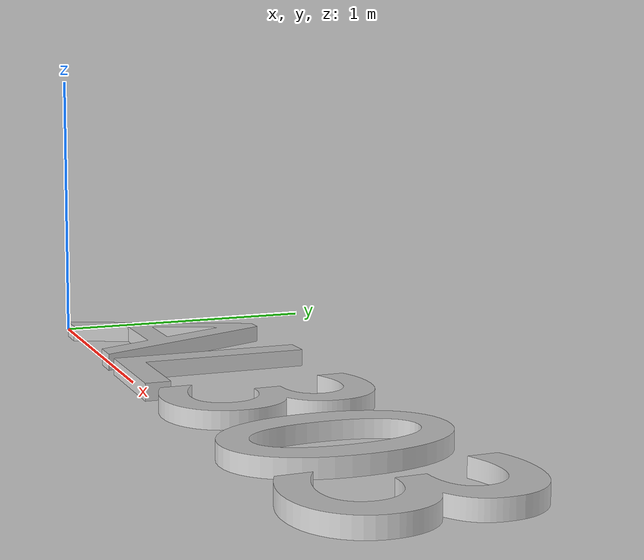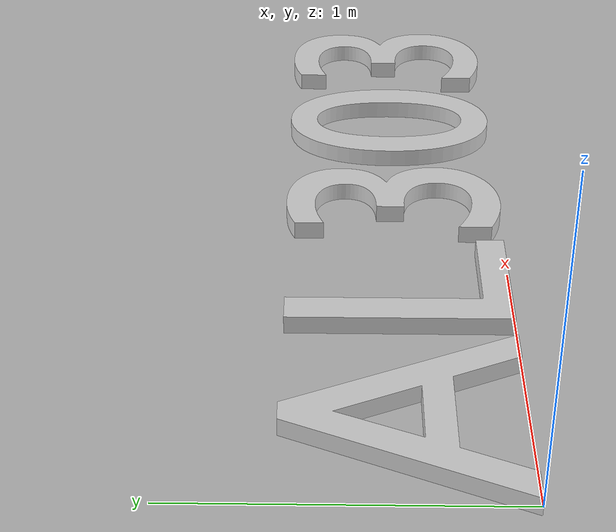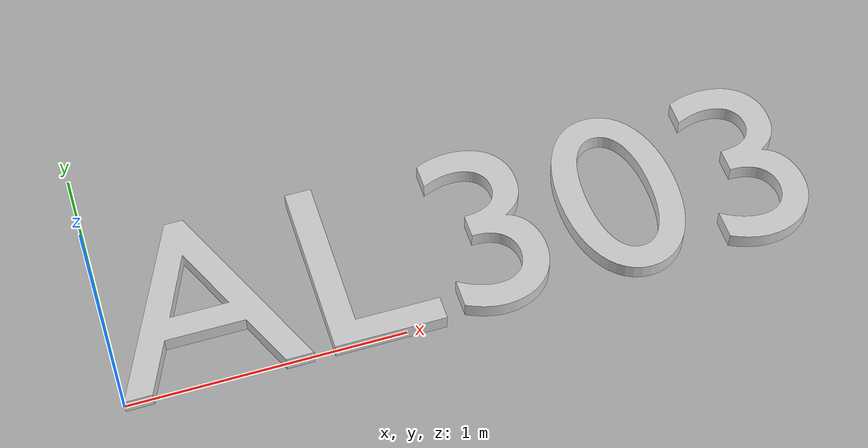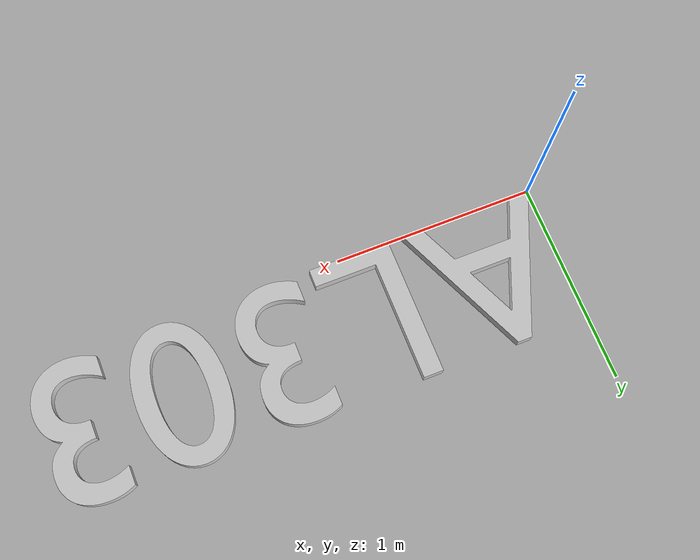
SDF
<?xml version='1.0'?>
    <sdf version='1.6'>
      <model name='AL303'>
        <link name='link'>
          <visual name='visual'>
            <geometry>
              <mesh>
                <uri>model://localros/text_3d_models/AL303/AL303.dae</uri>
              </mesh>
            </geometry>
          </visual>
        </link>
      </model>
    </sdf>
